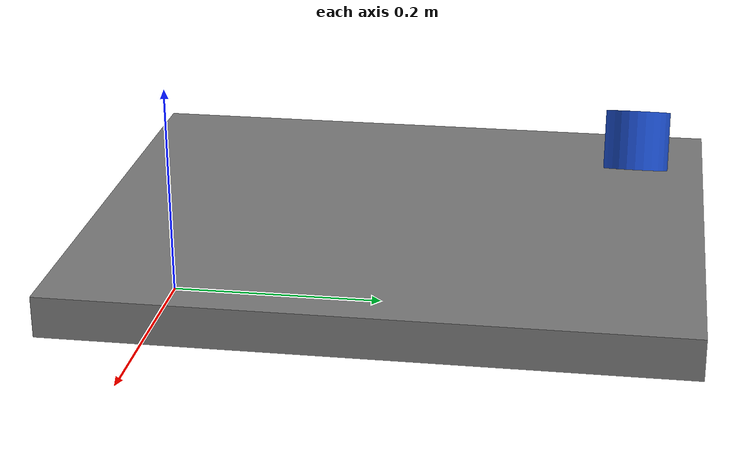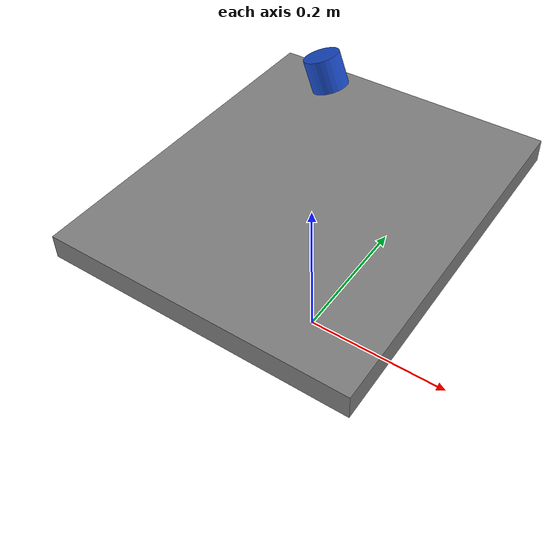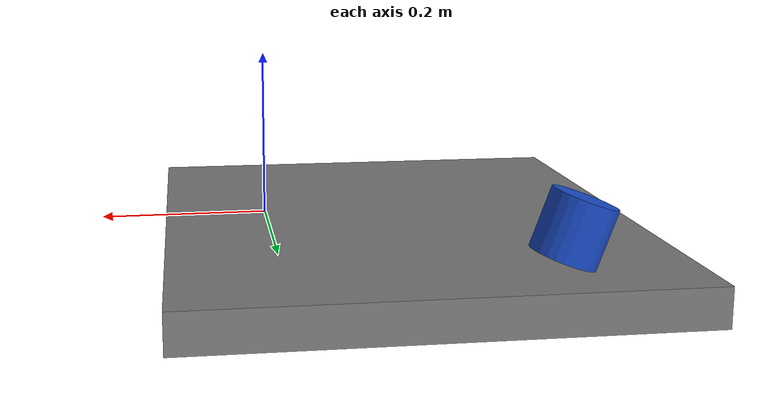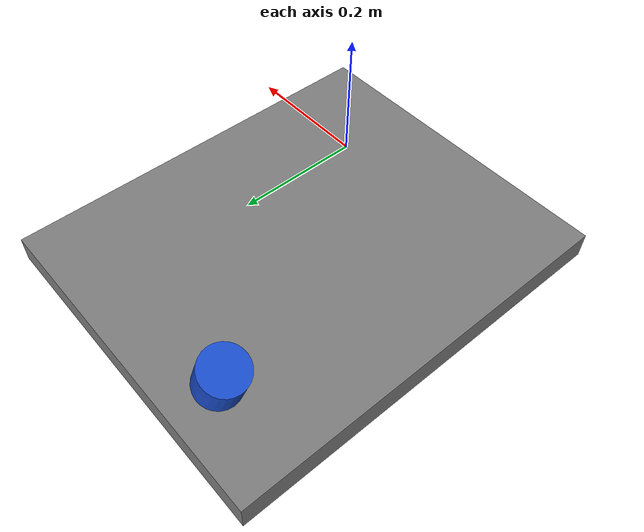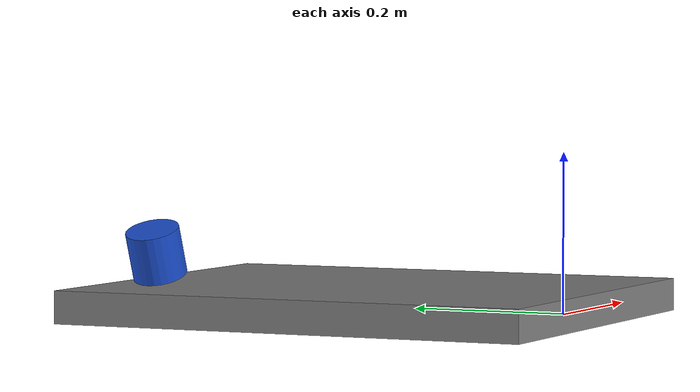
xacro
<?xml version="1.0"?>
<robot name="livox_rig" xmlns:xacro="http://www.ros.org/wiki/xacro">

  <xacro:arg name="livox_x"     default="-0.255"/>
  <xacro:arg name="livox_y"     default="0.43"/>
  <xacro:arg name="livox_z"     default="0.08"/>
  <xacro:arg name="livox_roll"  default="0.0"/>
  <xacro:arg name="livox_pitch" default="0.3491"/>
  <xacro:arg name="livox_yaw"   default="3.135"/>
  <xacro:arg name="h_samples"   default="720"/>   <!-- 0.5 deg -->
  <xacro:arg name="v_samples"   default="60"/>    <!-- ~1 deg -->
  <xacro:arg name="max_range"   default="20.0"/>
  <xacro:arg name="range_noise" default="0.002"/> <!-- m, std -->

  <material name="rig_grey"><color rgba="0.5 0.5 0.5 1"/></material>
  <material name="livox_blue"><color rgba="0.1 0.3 0.8 1"/></material>

  <link name="base_link">
    <inertial>
      <origin xyz="0 0 0.02"/>
      <mass value="20.0"/>
      <inertia ixx="0.3" ixy="0" ixz="0" iyy="0.3" iyz="0" izz="0.3"/>
    </inertial>
    <visual>
      <origin xyz="-0.13 0.2 0.02"/>
      <geometry><box size="0.5 0.6 0.04"/></geometry>
      <material name="rig_grey"/>
    </visual>
  </link>

  <link name="livox_frame">
    <inertial>
      <mass value="0.3"/>
      <inertia ixx="1e-4" ixy="0" ixz="0" iyy="1e-4" iyz="0" izz="1e-4"/>
    </inertial>
    <visual>
      <geometry><cylinder radius="0.033" length="0.06"/></geometry>
      <material name="livox_blue"/>
    </visual>
  </link>

  <joint name="livox_joint" type="fixed">
    <parent link="base_link"/>
    <child link="livox_frame"/>
    <origin xyz="$(arg livox_x) $(arg livox_y) $(arg livox_z)"
            rpy="$(arg livox_roll) $(arg livox_pitch) $(arg livox_yaw)"/>
  </joint>

  <gazebo reference="base_link">
    <turnGravityOff>true</turnGravityOff>
    <sensor type="ray" name="livox">
      <!-- same pose as livox_joint (URDF and SDF rpy are both fixed-axis X, Y, Z) -->
      <pose>$(arg livox_x) $(arg livox_y) $(arg livox_z) $(arg livox_roll) $(arg livox_pitch) $(arg livox_yaw)</pose>
      <visualize>false</visualize>
      <update_rate>10</update_rate>
      <ray>
        <scan>
          <horizontal>
            <samples>$(arg h_samples)</samples>
            <resolution>1</resolution>
            <min_angle>-3.14159</min_angle>
            <max_angle>3.14159</max_angle>
          </horizontal>
          <vertical>
            <samples>$(arg v_samples)</samples>
            <resolution>1</resolution>
            <min_angle>-0.1222</min_angle>
            <max_angle>0.9076</max_angle>
          </vertical>
        </scan>
        <range>
          <min>0.1</min>
          <max>$(arg max_range)</max>
          <resolution>0.001</resolution>
        </range>
        <noise>
          <type>gaussian</type>
          <mean>0.0</mean>
          <stddev>$(arg range_noise)</stddev>
        </noise>
      </ray>
      <plugin name="livox_block_laser" filename="libgazebo_ros_block_laser.so">
        <topicName>/livox/sim_points</topicName>
        <frameName>livox_frame</frameName>
        <updateRate>10</updateRate>
        <gaussianNoise>0.0</gaussianNoise>
        <hokuyoMinIntensity>0</hokuyoMinIntensity>
      </plugin>
    </sensor>
  </gazebo>

  <gazebo>
    <plugin name="planar_move" filename="libgazebo_ros_planar_move.so">
      <commandTopic>cmd_vel</commandTopic>
      <odometryTopic>odom</odometryTopic>
      <odometryFrame>odom</odometryFrame>
      <odometryRate>50.0</odometryRate>
      <robotBaseFrame>base_link</robotBaseFrame>
    </plugin>
  </gazebo>
</robot>
